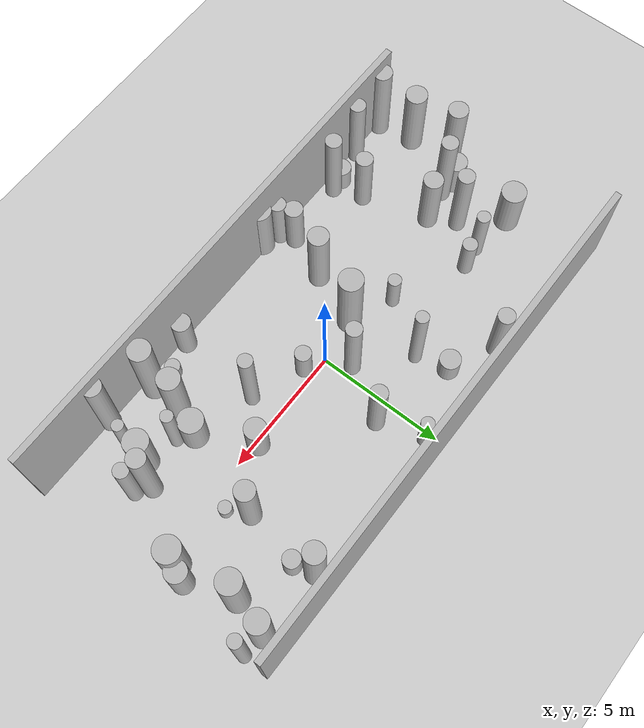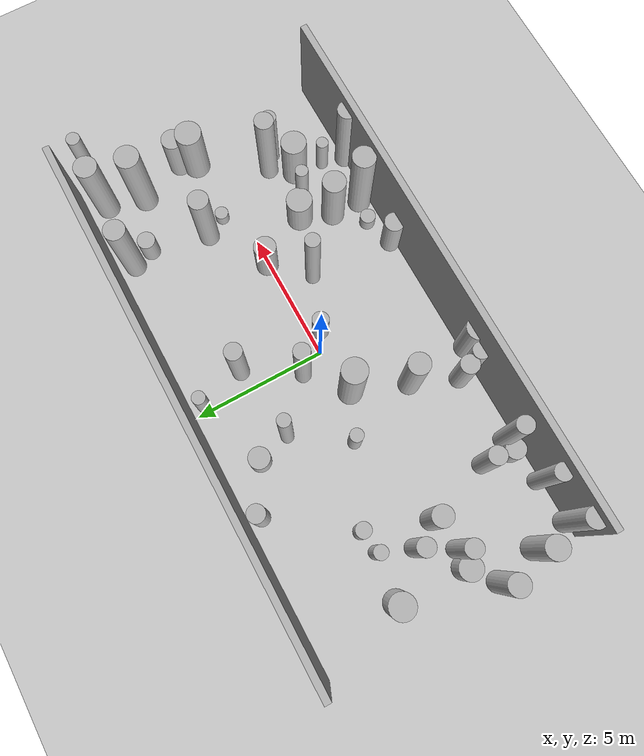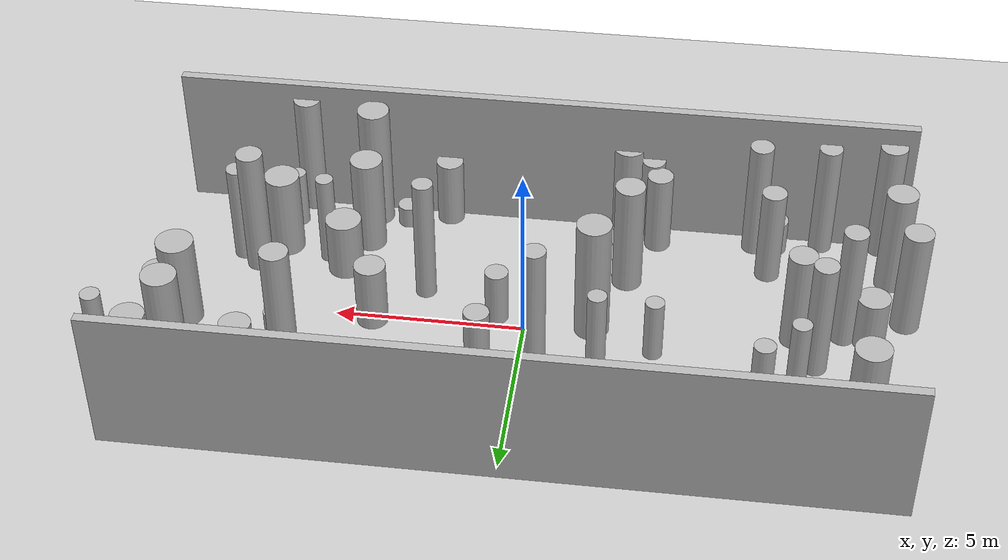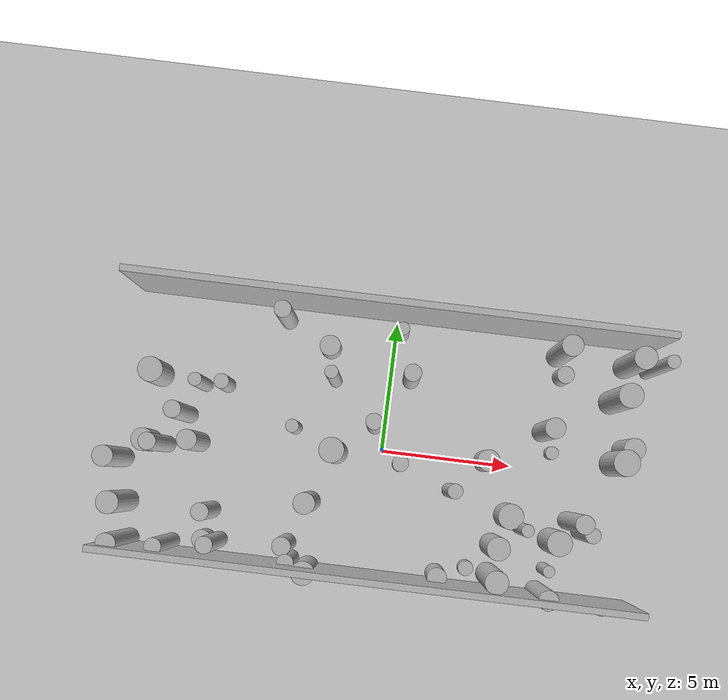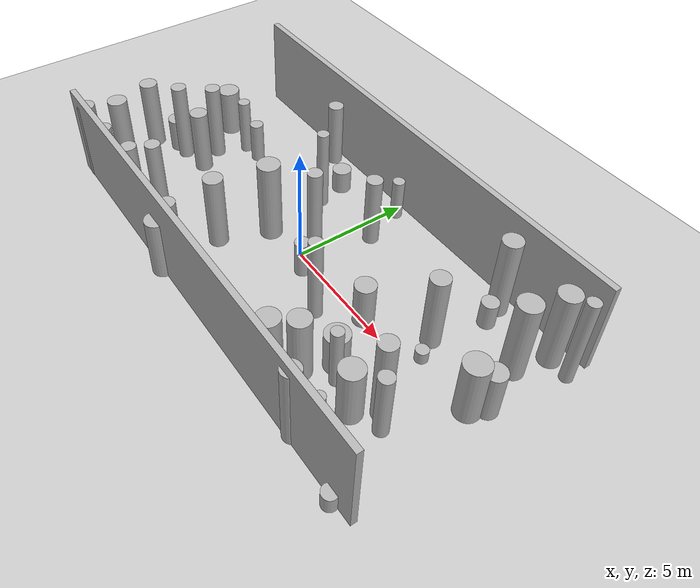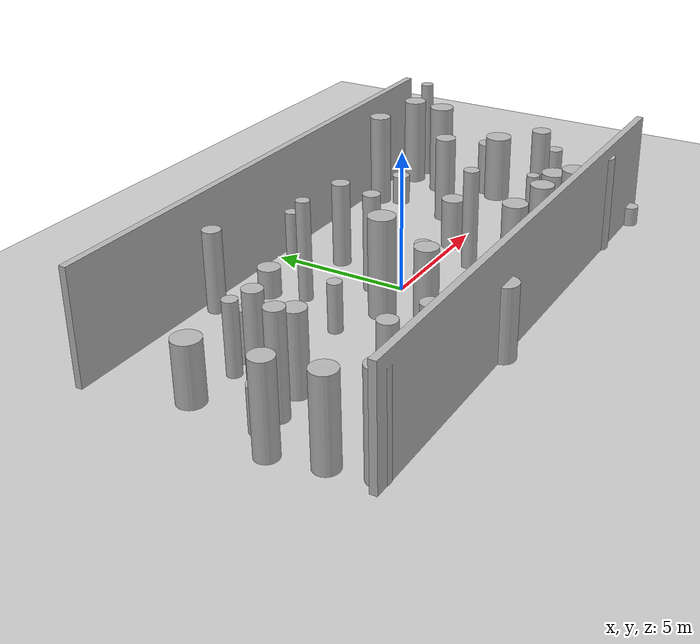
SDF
<?xml version="1.0"?>
<sdf version="1.4">
  <world name="default">
    <gui>
      <camera name="user_camera">
        <pose>-20 -30 40 0 0.66 0.83</pose>
      </camera>
    </gui>
    <include>
      <uri>model://ground_plane</uri>
    </include>
    <include>
      <uri>model://sun</uri>
    </include>
    <scene>
      <shadows>0</shadows>
    </scene>
    <model name="forest">
      <static>true</static>
      <link name="cylinder0">
        <pose>-9.030599917804443 -0.6708565465155534 0.7579356392136696 0 0 0 </pose>
        <visual name="visual">
          <geometry>
            <cylinder>
              <radius>0.433293896033409</radius>
              <length>1.5158712784273392</length>
            </cylinder>
          </geometry>
        </visual>
        <collision name="collision">
          <geometry>
            <cylinder>
              <radius>0.433293896033409</radius>
              <length>1.5158712784273392</length>
            </cylinder>
          </geometry>
          <max_contacts>0</max_contacts>
        </collision>
      </link>
      <link name="cylinder1">
        <pose>-9.615430143410556 -3.1013890516680065 1.5375598282840068 0 0 0 </pose>
        <visual name="visual">
          <geometry>
            <cylinder>
              <radius>0.4191572089539277</radius>
              <length>3.0751196565680137</length>
            </cylinder>
          </geometry>
        </visual>
        <collision name="collision">
          <geometry>
            <cylinder>
              <radius>0.4191572089539277</radius>
              <length>3.0751196565680137</length>
            </cylinder>
          </geometry>
          <max_contacts>0</max_contacts>
        </collision>
      </link>
      <link name="cylinder2">
        <pose>5.641617947808886 -2.3048321944028083 1.3409784457554064 0 0 0 </pose>
        <visual name="visual">
          <geometry>
            <cylinder>
              <radius>0.23802066314973658</radius>
              <length>2.6819568915108127</length>
            </cylinder>
          </geometry>
        </visual>
        <collision name="collision">
          <geometry>
            <cylinder>
              <radius>0.23802066314973658</radius>
              <length>2.6819568915108127</length>
            </cylinder>
          </geometry>
          <max_contacts>0</max_contacts>
        </collision>
      </link>
      <link name="cylinder3">
        <pose>-3.25035876474203 -3.978166333672639 1.18543313527362 0 0 0 </pose>
        <visual name="visual">
          <geometry>
            <cylinder>
              <radius>0.3524108190071348</radius>
              <length>2.37086627054724</length>
            </cylinder>
          </geometry>
        </visual>
        <collision name="collision">
          <geometry>
            <cylinder>
              <radius>0.3524108190071348</radius>
              <length>2.37086627054724</length>
            </cylinder>
          </geometry>
          <max_contacts>0</max_contacts>
        </collision>
      </link>
      <link name="cylinder4">
        <pose>0.24264273810120152 4.62276405553202 0.9103897239829393 0 0 0 </pose>
        <visual name="visual">
          <geometry>
            <cylinder>
              <radius>0.25052081844086704</radius>
              <length>1.8207794479658785</length>
            </cylinder>
          </geometry>
        </visual>
        <collision name="collision">
          <geometry>
            <cylinder>
              <radius>0.25052081844086704</radius>
              <length>1.8207794479658785</length>
            </cylinder>
          </geometry>
          <max_contacts>0</max_contacts>
        </collision>
      </link>
      <link name="cylinder5">
        <pose>-2.1233621612799425 2.5102031774396476 1.8034446839065625 0 0 0 </pose>
        <visual name="visual">
          <geometry>
            <cylinder>
              <radius>0.24504271405783246</radius>
              <length>3.606889367813125</length>
            </cylinder>
          </geometry>
        </visual>
        <collision name="collision">
          <geometry>
            <cylinder>
              <radius>0.24504271405783246</radius>
              <length>3.606889367813125</length>
            </cylinder>
          </geometry>
          <max_contacts>0</max_contacts>
        </collision>
      </link>
      <link name="cylinder6">
        <pose>-8.91888655135278 1.940254297949945 1.0636764367594855 0 0 0 </pose>
        <visual name="visual">
          <geometry>
            <cylinder>
              <radius>0.47358682026868004</radius>
              <length>2.127352873518971</length>
            </cylinder>
          </geometry>
        </visual>
        <collision name="collision">
          <geometry>
            <cylinder>
              <radius>0.47358682026868004</radius>
              <length>2.127352873518971</length>
            </cylinder>
          </geometry>
          <max_contacts>0</max_contacts>
        </collision>
      </link>
      <link name="cylinder7">
        <pose>-2.5461007017008157 -2.275125325634597 1.6300849078069017 0 0 0 </pose>
        <visual name="visual">
          <geometry>
            <cylinder>
              <radius>0.39945351416022734</radius>
              <length>3.2601698156138035</length>
            </cylinder>
          </geometry>
        </visual>
        <collision name="collision">
          <geometry>
            <cylinder>
              <radius>0.39945351416022734</radius>
              <length>3.2601698156138035</length>
            </cylinder>
          </geometry>
          <max_contacts>0</max_contacts>
        </collision>
      </link>
      <link name="cylinder8">
        <pose>5.0967243942371745 -1.89095097804885 0.8475401842566401 0 0 0 </pose>
        <visual name="visual">
          <geometry>
            <cylinder>
              <radius>0.4845183683946315</radius>
              <length>1.6950803685132803</length>
            </cylinder>
          </geometry>
        </visual>
        <collision name="collision">
          <geometry>
            <cylinder>
              <radius>0.4845183683946315</radius>
              <length>1.6950803685132803</length>
            </cylinder>
          </geometry>
          <max_contacts>0</max_contacts>
        </collision>
      </link>
      <link name="cylinder9">
        <pose>-6.306988586599416 -3.05560628812377 1.4051931282859564 0 0 0 </pose>
        <visual name="visual">
          <geometry>
            <cylinder>
              <radius>0.3311721253061788</radius>
              <length>2.810386256571913</length>
            </cylinder>
          </geometry>
        </visual>
        <collision name="collision">
          <geometry>
            <cylinder>
              <radius>0.3311721253061788</radius>
              <length>2.810386256571913</length>
            </cylinder>
          </geometry>
          <max_contacts>0</max_contacts>
        </collision>
      </link>
      <link name="cylinder10">
        <pose>6.105103282509866 1.5001894542531646 1.640286242681664 0 0 0 </pose>
        <visual name="visual">
          <geometry>
            <cylinder>
              <radius>0.37887704990563376</radius>
              <length>3.280572485363328</length>
            </cylinder>
          </geometry>
        </visual>
        <collision name="collision">
          <geometry>
            <cylinder>
              <radius>0.37887704990563376</radius>
              <length>3.280572485363328</length>
            </cylinder>
          </geometry>
          <max_contacts>0</max_contacts>
        </collision>
      </link>
      <link name="cylinder11">
        <pose>-9.9821620816388 -1.452350131283413 1.5697068242606425 0 0 0 </pose>
        <visual name="visual">
          <geometry>
            <cylinder>
              <radius>0.3874131296169384</radius>
              <length>3.139413648521285</length>
            </cylinder>
          </geometry>
        </visual>
        <collision name="collision">
          <geometry>
            <cylinder>
              <radius>0.3874131296169384</radius>
              <length>3.139413648521285</length>
            </cylinder>
          </geometry>
          <max_contacts>0</max_contacts>
        </collision>
      </link>
      <link name="cylinder12">
        <pose>-5.8960178099019505 -4.178401771970176 1.7266212152547962 0 0 0 </pose>
        <visual name="visual">
          <geometry>
            <cylinder>
              <radius>0.3197190630048466</radius>
              <length>3.4532424305095923</length>
            </cylinder>
          </geometry>
        </visual>
        <collision name="collision">
          <geometry>
            <cylinder>
              <radius>0.3197190630048466</radius>
              <length>3.4532424305095923</length>
            </cylinder>
          </geometry>
          <max_contacts>0</max_contacts>
        </collision>
      </link>
      <link name="cylinder13">
        <pose>-3.453886063159315 0.500931511647277 0.8848896029637205 0 0 0 </pose>
        <visual name="visual">
          <geometry>
            <cylinder>
              <radius>0.25282700317388174</radius>
              <length>1.769779205927441</length>
            </cylinder>
          </geometry>
        </visual>
        <collision name="collision">
          <geometry>
            <cylinder>
              <radius>0.25282700317388174</radius>
              <length>1.769779205927441</length>
            </cylinder>
          </geometry>
          <max_contacts>0</max_contacts>
        </collision>
      </link>
      <link name="cylinder14">
        <pose>-7.096265641311557 -0.502849934673061 1.4417586382977914 0 0 0 </pose>
        <visual name="visual">
          <geometry>
            <cylinder>
              <radius>0.37820997597347655</radius>
              <length>2.8835172765955828</length>
            </cylinder>
          </geometry>
        </visual>
        <collision name="collision">
          <geometry>
            <cylinder>
              <radius>0.37820997597347655</radius>
              <length>2.8835172765955828</length>
            </cylinder>
          </geometry>
          <max_contacts>0</max_contacts>
        </collision>
      </link>
      <link name="cylinder15">
        <pose>-7.632979122553807 0.5109076391741603 1.7281607483912471 0 0 0 </pose>
        <visual name="visual">
          <geometry>
            <cylinder>
              <radius>0.32326341995598507</radius>
              <length>3.4563214967824942</length>
            </cylinder>
          </geometry>
        </visual>
        <collision name="collision">
          <geometry>
            <cylinder>
              <radius>0.32326341995598507</radius>
              <length>3.4563214967824942</length>
            </cylinder>
          </geometry>
          <max_contacts>0</max_contacts>
        </collision>
      </link>
      <link name="cylinder16">
        <pose>2.5911621650311663 -4.452429477149252 0.9739266619381112 0 0 0 </pose>
        <visual name="visual">
          <geometry>
            <cylinder>
              <radius>0.3697181079738795</radius>
              <length>1.9478533238762223</length>
            </cylinder>
          </geometry>
        </visual>
        <collision name="collision">
          <geometry>
            <cylinder>
              <radius>0.3697181079738795</radius>
              <length>1.9478533238762223</length>
            </cylinder>
          </geometry>
          <max_contacts>0</max_contacts>
        </collision>
      </link>
      <link name="cylinder17">
        <pose>-9.376039740312102 -4.531499411179906 1.7541144251438672 0 0 0 </pose>
        <visual name="visual">
          <geometry>
            <cylinder>
              <radius>0.37033853231305913</radius>
              <length>3.5082288502877343</length>
            </cylinder>
          </geometry>
        </visual>
        <collision name="collision">
          <geometry>
            <cylinder>
              <radius>0.37033853231305913</radius>
              <length>3.5082288502877343</length>
            </cylinder>
          </geometry>
          <max_contacts>0</max_contacts>
        </collision>
      </link>
      <link name="cylinder18">
        <pose>8.981310150371463 0.5929329741846869 1.285128047344392 0 0 0 </pose>
        <visual name="visual">
          <geometry>
            <cylinder>
              <radius>0.4962325741468631</radius>
              <length>2.570256094688784</length>
            </cylinder>
          </geometry>
        </visual>
        <collision name="collision">
          <geometry>
            <cylinder>
              <radius>0.4962325741468631</radius>
              <length>2.570256094688784</length>
            </cylinder>
          </geometry>
          <max_contacts>0</max_contacts>
        </collision>
      </link>
      <link name="cylinder19">
        <pose>6.340695338313466 4.49883270258935 1.772924076708598 0 0 0 </pose>
        <visual name="visual">
          <geometry>
            <cylinder>
              <radius>0.39478381633455784</radius>
              <length>3.545848153417196</length>
            </cylinder>
          </geometry>
        </visual>
        <collision name="collision">
          <geometry>
            <cylinder>
              <radius>0.39478381633455784</radius>
              <length>3.545848153417196</length>
            </cylinder>
          </geometry>
          <max_contacts>0</max_contacts>
        </collision>
      </link>
      <link name="cylinder20">
        <pose>4.002874630013885 0.09474209365219544 0.9342732556060871 0 0 0 </pose>
        <visual name="visual">
          <geometry>
            <cylinder>
              <radius>0.41672793508048633</radius>
              <length>1.8685465112121742</length>
            </cylinder>
          </geometry>
        </visual>
        <collision name="collision">
          <geometry>
            <cylinder>
              <radius>0.41672793508048633</radius>
              <length>1.8685465112121742</length>
            </cylinder>
          </geometry>
          <max_contacts>0</max_contacts>
        </collision>
      </link>
      <link name="cylinder21">
        <pose>-1.7868779038247684 -0.25724280384533316 1.7696854131031288 0 0 0 </pose>
        <visual name="visual">
          <geometry>
            <cylinder>
              <radius>0.46037384577039236</radius>
              <length>3.5393708262062575</length>
            </cylinder>
          </geometry>
        </visual>
        <collision name="collision">
          <geometry>
            <cylinder>
              <radius>0.46037384577039236</radius>
              <length>3.5393708262062575</length>
            </cylinder>
          </geometry>
          <max_contacts>0</max_contacts>
        </collision>
      </link>
      <link name="cylinder22">
        <pose>4.639783300024828 -3.081244661414183 1.4200590386590495 0 0 0 </pose>
        <visual name="visual">
          <geometry>
            <cylinder>
              <radius>0.43482086303498657</radius>
              <length>2.840118077318099</length>
            </cylinder>
          </geometry>
        </visual>
        <collision name="collision">
          <geometry>
            <cylinder>
              <radius>0.43482086303498657</radius>
              <length>2.840118077318099</length>
            </cylinder>
          </geometry>
          <max_contacts>0</max_contacts>
        </collision>
      </link>
      <link name="cylinder23">
        <pose>6.896816451991128 -2.641179144234181 1.2013486310807107 0 0 0 </pose>
        <visual name="visual">
          <geometry>
            <cylinder>
              <radius>0.4731027138050195</radius>
              <length>2.4026972621614213</length>
            </cylinder>
          </geometry>
        </visual>
        <collision name="collision">
          <geometry>
            <cylinder>
              <radius>0.4731027138050195</radius>
              <length>2.4026972621614213</length>
            </cylinder>
          </geometry>
          <max_contacts>0</max_contacts>
        </collision>
      </link>
      <link name="cylinder24">
        <pose>-3.0302614767057756 -4.548663490015792 1.2121519354504118 0 0 0 </pose>
        <visual name="visual">
          <geometry>
            <cylinder>
              <radius>0.3146689816759999</radius>
              <length>2.4243038709008236</length>
            </cylinder>
          </geometry>
        </visual>
        <collision name="collision">
          <geometry>
            <cylinder>
              <radius>0.3146689816759999</radius>
              <length>2.4243038709008236</length>
            </cylinder>
          </geometry>
          <max_contacts>0</max_contacts>
        </collision>
      </link>
      <link name="cylinder25">
        <pose>9.315610610321716 1.161317574100778 1.0431543570930089 0 0 0 </pose>
        <visual name="visual">
          <geometry>
            <cylinder>
              <radius>0.41016736075227983</radius>
              <length>2.0863087141860177</length>
            </cylinder>
          </geometry>
        </visual>
        <collision name="collision">
          <geometry>
            <cylinder>
              <radius>0.41016736075227983</radius>
              <length>2.0863087141860177</length>
            </cylinder>
          </geometry>
          <max_contacts>0</max_contacts>
        </collision>
      </link>
      <link name="cylinder26">
        <pose>-6.4197829627051455 -4.1965171373662145 0.49721546923611987 0 0 0 </pose>
        <visual name="visual">
          <geometry>
            <cylinder>
              <radius>0.37893166299126224</radius>
              <length>0.9944309384722397</length>
            </cylinder>
          </geometry>
        </visual>
        <collision name="collision">
          <geometry>
            <cylinder>
              <radius>0.37893166299126224</radius>
              <length>0.9944309384722397</length>
            </cylinder>
          </geometry>
          <max_contacts>0</max_contacts>
        </collision>
      </link>
      <link name="cylinder27">
        <pose>-2.335414814140016 -4.83365872229966 1.3109102392164622 0 0 0 </pose>
        <visual name="visual">
          <geometry>
            <cylinder>
              <radius>0.4450192649085223</radius>
              <length>2.6218204784329244</length>
            </cylinder>
          </geometry>
        </visual>
        <collision name="collision">
          <geometry>
            <cylinder>
              <radius>0.4450192649085223</radius>
              <length>2.6218204784329244</length>
            </cylinder>
          </geometry>
          <max_contacts>0</max_contacts>
        </collision>
      </link>
      <link name="cylinder28">
        <pose>6.538436083736915 -4.643871048375921 1.7715185128680297 0 0 0 </pose>
        <visual name="visual">
          <geometry>
            <cylinder>
              <radius>0.36823049846205047</radius>
              <length>3.5430370257360595</length>
            </cylinder>
          </geometry>
        </visual>
        <collision name="collision">
          <geometry>
            <cylinder>
              <radius>0.36823049846205047</radius>
              <length>3.5430370257360595</length>
            </cylinder>
          </geometry>
          <max_contacts>0</max_contacts>
        </collision>
      </link>
      <link name="cylinder29">
        <pose>7.98140197390989 -2.1910593377381806 1.4434511840076139 0 0 0 </pose>
        <visual name="visual">
          <geometry>
            <cylinder>
              <radius>0.2886895292797949</radius>
              <length>2.8869023680152277</length>
            </cylinder>
          </geometry>
        </visual>
        <collision name="collision">
          <geometry>
            <cylinder>
              <radius>0.2886895292797949</radius>
              <length>2.8869023680152277</length>
            </cylinder>
          </geometry>
          <max_contacts>0</max_contacts>
        </collision>
      </link>
      <link name="cylinder30">
        <pose>9.09143276287362 -4.980028884898316 0.3575143983794581 0 0 0 </pose>
        <visual name="visual">
          <geometry>
            <cylinder>
              <radius>0.29774374634944134</radius>
              <length>0.7150287967589162</length>
            </cylinder>
          </geometry>
        </visual>
        <collision name="collision">
          <geometry>
            <cylinder>
              <radius>0.29774374634944134</radius>
              <length>0.7150287967589162</length>
            </cylinder>
          </geometry>
          <max_contacts>0</max_contacts>
        </collision>
      </link>
      <link name="cylinder31">
        <pose>0.7811768245358941 2.883837618000195 1.5431285957153942 0 0 0 </pose>
        <visual name="visual">
          <geometry>
            <cylinder>
              <radius>0.3237811581957912</radius>
              <length>3.0862571914307884</length>
            </cylinder>
          </geometry>
        </visual>
        <collision name="collision">
          <geometry>
            <cylinder>
              <radius>0.3237811581957912</radius>
              <length>3.0862571914307884</length>
            </cylinder>
          </geometry>
          <max_contacts>0</max_contacts>
        </collision>
      </link>
      <link name="cylinder32">
        <pose>-7.13490319064209 1.740811558890595 1.2756100134899204 0 0 0 </pose>
        <visual name="visual">
          <geometry>
            <cylinder>
              <radius>0.25417646046415093</radius>
              <length>2.551220026979841</length>
            </cylinder>
          </geometry>
        </visual>
        <collision name="collision">
          <geometry>
            <cylinder>
              <radius>0.25417646046415093</radius>
              <length>2.551220026979841</length>
            </cylinder>
          </geometry>
          <max_contacts>0</max_contacts>
        </collision>
      </link>
      <link name="cylinder33">
        <pose>9.889965348668511 4.304395680661605 1.954289819534682 0 0 0 </pose>
        <visual name="visual">
          <geometry>
            <cylinder>
              <radius>0.24673885128170164</radius>
              <length>3.908579639069364</length>
            </cylinder>
          </geometry>
        </visual>
        <collision name="collision">
          <geometry>
            <cylinder>
              <radius>0.24673885128170164</radius>
              <length>3.908579639069364</length>
            </cylinder>
          </geometry>
          <max_contacts>0</max_contacts>
        </collision>
      </link>
      <link name="cylinder34">
        <pose>-7.724623400205644 -4.4526946857996785 1.677238841046742 0 0 0 </pose>
        <visual name="visual">
          <geometry>
            <cylinder>
              <radius>0.3118176975196828</radius>
              <length>3.354477682093484</length>
            </cylinder>
          </geometry>
        </visual>
        <collision name="collision">
          <geometry>
            <cylinder>
              <radius>0.3118176975196828</radius>
              <length>3.354477682093484</length>
            </cylinder>
          </geometry>
          <max_contacts>0</max_contacts>
        </collision>
      </link>
      <link name="cylinder35">
        <pose>8.62992574676285 2.9716212923526264 1.7531576034073029 0 0 0 </pose>
        <visual name="visual">
          <geometry>
            <cylinder>
              <radius>0.45309669799698843</radius>
              <length>3.5063152068146057</length>
            </cylinder>
          </geometry>
        </visual>
        <collision name="collision">
          <geometry>
            <cylinder>
              <radius>0.45309669799698843</radius>
              <length>3.5063152068146057</length>
            </cylinder>
          </geometry>
          <max_contacts>0</max_contacts>
        </collision>
      </link>
      <link name="cylinder36">
        <pose>-0.3974168609820765 0.9335053607991037 1.7610248480244852 0 0 0 </pose>
        <visual name="visual">
          <geometry>
            <cylinder>
              <radius>0.30448454437524586</radius>
              <length>3.5220496960489704</length>
            </cylinder>
          </geometry>
        </visual>
        <collision name="collision">
          <geometry>
            <cylinder>
              <radius>0.30448454437524586</radius>
              <length>3.5220496960489704</length>
            </cylinder>
          </geometry>
          <max_contacts>0</max_contacts>
        </collision>
      </link>
      <link name="cylinder37">
        <pose>7.479190118365629 -1.8075446079705104 1.8587518781526315 0 0 0 </pose>
        <visual name="visual">
          <geometry>
            <cylinder>
              <radius>0.35107133377202326</radius>
              <length>3.717503756305263</length>
            </cylinder>
          </geometry>
        </visual>
        <collision name="collision">
          <geometry>
            <cylinder>
              <radius>0.35107133377202326</radius>
              <length>3.717503756305263</length>
            </cylinder>
          </geometry>
          <max_contacts>0</max_contacts>
        </collision>
      </link>
      <link name="cylinder38">
        <pose>-8.35437649372573 -0.7362391193073652 1.7868498202139063 0 0 0 </pose>
        <visual name="visual">
          <geometry>
            <cylinder>
              <radius>0.32202256377828786</radius>
              <length>3.5736996404278125</length>
            </cylinder>
          </geometry>
        </visual>
        <collision name="collision">
          <geometry>
            <cylinder>
              <radius>0.32202256377828786</radius>
              <length>3.5736996404278125</length>
            </cylinder>
          </geometry>
          <max_contacts>0</max_contacts>
        </collision>
      </link>
      <link name="cylinder39">
        <pose>3.7295395207139066 -4.0899966457605625 0.3057420656451519 0 0 0 </pose>
        <visual name="visual">
          <geometry>
            <cylinder>
              <radius>0.29255924860285254</radius>
              <length>0.6114841312903038</length>
            </cylinder>
          </geometry>
        </visual>
        <collision name="collision">
          <geometry>
            <cylinder>
              <radius>0.29255924860285254</radius>
              <length>0.6114841312903038</length>
            </cylinder>
          </geometry>
          <max_contacts>0</max_contacts>
        </collision>
      </link>
      <link name="cylinder40">
        <pose>9.01695946430631 4.392671128978636 1.7134403147135044 0 0 0 </pose>
        <visual name="visual">
          <geometry>
            <cylinder>
              <radius>0.42631590409619646</radius>
              <length>3.426880629427009</length>
            </cylinder>
          </geometry>
        </visual>
        <collision name="collision">
          <geometry>
            <cylinder>
              <radius>0.42631590409619646</radius>
              <length>3.426880629427009</length>
            </cylinder>
          </geometry>
          <max_contacts>0</max_contacts>
        </collision>
      </link>
      <link name="cylinder41">
        <pose>2.7710926329310652 -1.1905824810906762 1.8347366338921436 0 0 0 </pose>
        <visual name="visual">
          <geometry>
            <cylinder>
              <radius>0.2753495518259086</radius>
              <length>3.669473267784287</length>
            </cylinder>
          </geometry>
        </visual>
        <collision name="collision">
          <geometry>
            <cylinder>
              <radius>0.2753495518259086</radius>
              <length>3.669473267784287</length>
            </cylinder>
          </geometry>
          <max_contacts>0</max_contacts>
        </collision>
      </link>
      <link name="cylinder42">
        <pose>6.607102787754325 3.715578502033109 0.5711609311529746 0 0 0 </pose>
        <visual name="visual">
          <geometry>
            <cylinder>
              <radius>0.33612178790401964</radius>
              <length>1.1423218623059492</length>
            </cylinder>
          </geometry>
        </visual>
        <collision name="collision">
          <geometry>
            <cylinder>
              <radius>0.33612178790401964</radius>
              <length>1.1423218623059492</length>
            </cylinder>
          </geometry>
          <max_contacts>0</max_contacts>
        </collision>
      </link>
      <link name="cylinder43">
        <pose>6.536734509669827 0.7165985252527332 0.25960409727374495 0 0 0 </pose>
        <visual name="visual">
          <geometry>
            <cylinder>
              <radius>0.25515853587761905</radius>
              <length>0.5192081945474899</length>
            </cylinder>
          </geometry>
        </visual>
        <collision name="collision">
          <geometry>
            <cylinder>
              <radius>0.25515853587761905</radius>
              <length>0.5192081945474899</length>
            </cylinder>
          </geometry>
          <max_contacts>0</max_contacts>
        </collision>
      </link>
      <link name="cylinder44">
        <pose>4.621718413041885 -4.230538666246354 1.8228224961676436 0 0 0 </pose>
        <visual name="visual">
          <geometry>
            <cylinder>
              <radius>0.4311982310035405</radius>
              <length>3.645644992335287</length>
            </cylinder>
          </geometry>
        </visual>
        <collision name="collision">
          <geometry>
            <cylinder>
              <radius>0.4311982310035405</radius>
              <length>3.645644992335287</length>
            </cylinder>
          </geometry>
          <max_contacts>0</max_contacts>
        </collision>
      </link>
      <link name="cylinder45">
        <pose>0.7502053196016778 -0.4082033289995204 0.780815743625595 0 0 0 </pose>
        <visual name="visual">
          <geometry>
            <cylinder>
              <radius>0.31263492443534624</radius>
              <length>1.56163148725119</length>
            </cylinder>
          </geometry>
        </visual>
        <collision name="collision">
          <geometry>
            <cylinder>
              <radius>0.31263492443534624</radius>
              <length>1.56163148725119</length>
            </cylinder>
          </geometry>
          <max_contacts>0</max_contacts>
        </collision>
      </link>
      <link name="cylinder46">
        <pose>-6.28172825430066 1.83970133304571 0.9157835127414984 0 0 0 </pose>
        <visual name="visual">
          <geometry>
            <cylinder>
              <radius>0.2864822629603336</radius>
              <length>1.8315670254829968</length>
            </cylinder>
          </geometry>
        </visual>
        <collision name="collision">
          <geometry>
            <cylinder>
              <radius>0.2864822629603336</radius>
              <length>1.8315670254829968</length>
            </cylinder>
          </geometry>
          <max_contacts>0</max_contacts>
        </collision>
      </link>
      <link name="cylinder47">
        <pose>6.74844163576514 -3.7590762483847073 0.8357143658872663 0 0 0 </pose>
        <visual name="visual">
          <geometry>
            <cylinder>
              <radius>0.22897600263388485</radius>
              <length>1.6714287317745327</length>
            </cylinder>
          </geometry>
        </visual>
        <collision name="collision">
          <geometry>
            <cylinder>
              <radius>0.22897600263388485</radius>
              <length>1.6714287317745327</length>
            </cylinder>
          </geometry>
          <max_contacts>0</max_contacts>
        </collision>
      </link>
      <link name="cylinder48">
        <pose>-2.455096275542365 3.7549605107619612 0.5142866613210383 0 0 0 </pose>
        <visual name="visual">
          <geometry>
            <cylinder>
              <radius>0.3998574251203799</radius>
              <length>1.0285733226420766</length>
            </cylinder>
          </geometry>
        </visual>
        <collision name="collision">
          <geometry>
            <cylinder>
              <radius>0.3998574251203799</radius>
              <length>1.0285733226420766</length>
            </cylinder>
          </geometry>
          <max_contacts>0</max_contacts>
        </collision>
      </link>
      <link name="cylinder49">
        <pose>-4.214363324383954 4.642889839162978 1.4622951294076003 0 0 0 </pose>
        <visual name="visual">
          <geometry>
            <cylinder>
              <radius>0.32306929864785616</radius>
              <length>2.9245902588152006</length>
            </cylinder>
          </geometry>
        </visual>
        <collision name="collision">
          <geometry>
            <cylinder>
              <radius>0.32306929864785616</radius>
              <length>2.9245902588152006</length>
            </cylinder>
          </geometry>
          <max_contacts>0</max_contacts>
        </collision>
      </link>
      <link name="cube0">
        <pose>0 5.25 2.0 0 0 0 </pose>
        <visual name="visual">
          <geometry>
            <box>
              <size>20 0.25 4.0</size>
            </box>
          </geometry>
        </visual>
        <collision name="collision">
          <geometry>
            <box>
              <size>20 0.25 4.0</size>
            </box>
          </geometry>
          <max_contacts>0</max_contacts>
        </collision>
      </link>
      <link name="cube1">
        <pose>0 -4.75 2.0 0 0 0 </pose>
        <visual name="visual">
          <geometry>
            <box>
              <size>20 0.25 4.0</size>
            </box>
          </geometry>
        </visual>
        <collision name="collision">
          <geometry>
            <box>
              <size>20 0.25 4.0</size>
            </box>
          </geometry>
          <max_contacts>0</max_contacts>
        </collision>
      </link>
    </model>
    <!-- Plugins -->
    <plugin name="gazebo_octomap" filename="librotors_gazebo_octomap_plugin.so"/>
    <plugin name="ros_interface_plugin" filename="librotors_gazebo_ros_interface_plugin.so"/>
    <!-- Physics -->
    <physics name="default_physics" default="0" type="ode">
      <max_step_size>0.004</max_step_size>
      <real_time_factor>1</real_time_factor>
      <real_time_update_rate>250</real_time_update_rate>
      <gravity>0 0 -9.8</gravity>
      <magnetic_field>6e-06 2.3e-05 -4.2e-05</magnetic_field>
      <ode>
        <solver>
          <type>quick</type>
          <iters>1000</iters>
          <sor>1.3</sor>
          <use_dynamic_moi_rescaling>0</use_dynamic_moi_rescaling>
        </solver>
        <constraints>
          <cfm>0</cfm>
          <erp>0.2</erp>
          <contact_max_correcting_vel>100</contact_max_correcting_vel>
          <contact_surface_layer>0.001</contact_surface_layer>
        </constraints>
      </ode>
    </physics>
  </world>
</sdf>
